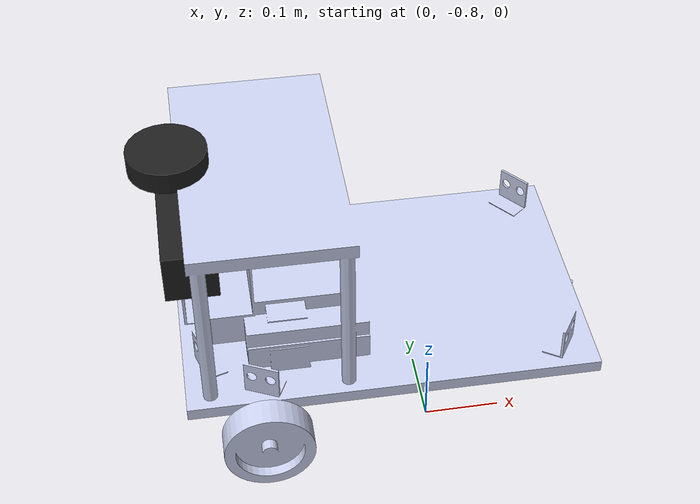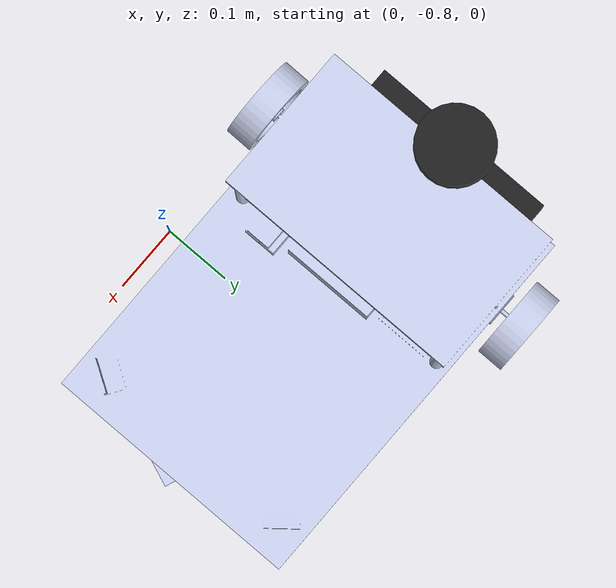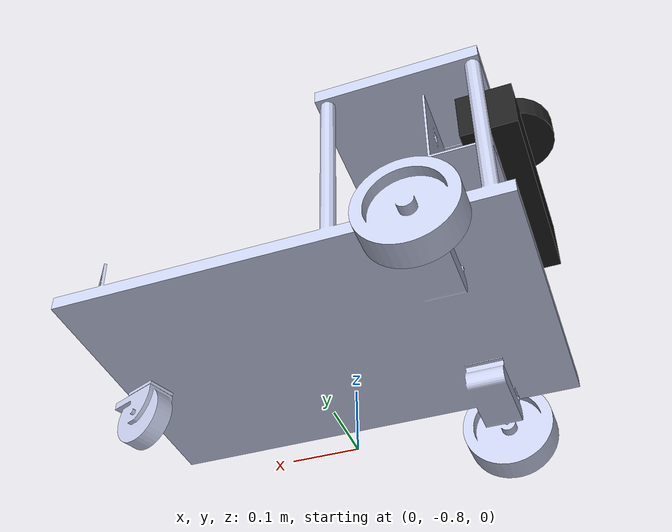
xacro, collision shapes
<?xml version="1.0" ?>
<robot name="potter" xmlns:xacro="http://ros.org/wiki/xacro">
  <xacro:include filename="$(find potter_description)/urdf/potter.gazebo.xacro"/>

  <link name="base_footprint"/>

  <joint name="base_joint" type="fixed">
    <parent link="base_footprint"/>
    <child link="base_link"/>
    <origin xyz="0.0 0.0 0.010" rpy="0 0 0"/>
  </joint>

  <link
    name="base_link">
    <inertial>
      <origin
        xyz="-0.120080357398591 -0.586886874304 0.0796377824349438"
        rpy="0 0 0" />
      <mass
        value="9.14455558385384" />
      <inertia
        ixx="0.188342414177923"
        ixy="-0.00224550467699626"
        ixz="0.0458582138362113"
        iyy="0.280000071911791"
        iyz="-0.00175136226771816"
        izz="0.288397145801752" />
    </inertial>
    <visual>
      <origin
        xyz="0 0 0"
        rpy="0 0 0" />
      <geometry>
        <mesh
          filename="package://potter_description/meshes/base_link.STL" />
      </geometry>
      <material
        name="">
        <color
          rgba="0.792156862745098 0.819607843137255 0.933333333333333 1" />
      </material>
    </visual>
    <collision>
      <origin
        xyz="0 0 0"
        rpy="0 0 0" />
      <geometry>
        <mesh
          filename="package://potter_description/meshes/base_link.STL" />
      </geometry>
    </collision>
  </link>

  <link
    name="roda_direita">
    <inertial>
      <origin
        xyz="0.000340924586355457 0.00046328993449625 -0.0199805356473918"
        rpy="0 0 0" />
      <mass
        value="0.287619024392822" />
      <inertia
        ixx="0.000388411933483959"
        ixy="8.02432065699622E-11"
        ixz="1.90860427722761E-09"
        iyy="0.00038841198347906"
        iyz="2.59364442995176E-09"
        izz="0.000717036148051891" />
    </inertial>
    <visual>
      <origin
        xyz="0 0 0"
        rpy="0 0 0" />
      <geometry>
        <mesh
          filename="package://potter_description/meshes/roda_direita.STL" />
      </geometry>
      <material
        name="">
        <color
          rgba="0.792156862745098 0.819607843137255 0.933333333333333 1" />
      </material>
    </visual>
    <collision>
      <origin
        xyz="0 0 0"
        rpy="0 0 0" />
      <geometry>
        <mesh
          filename="package://potter_description/meshes/roda_direita.STL" />
      </geometry>
    </collision>
  </link>

  <joint
    name="rodadireita"
    type="continuous">
    <origin
      xyz="-0.21335 -0.3315 -0.020509"
      rpy="-1.5708 0.16486 -1.0187E-17" />
    <parent
      link="base_link" />
    <child
      link="roda_direita" />
    <axis
      xyz="0 0 -1" />
  </joint>

  <link
    name="roda_esquerda">
    <inertial>
      <origin
        xyz="0.000340924586351654 0.000463289934497416 0.0210452055367201"
        rpy="0 0 0" />
      <mass
        value="0.287619024392823" />
      <inertia
        ixx="0.00038841193348396"
        ixy="8.02432065589412E-11"
        ixz="1.90860428583043E-09"
        iyy="0.00038841198347906"
        iyz="2.59364442982349E-09"
        izz="0.000717036148051891" />
    </inertial>
    <visual>
      <origin
        xyz="0 0 0"
        rpy="0 0 0" />
      <geometry>
        <mesh
          filename="package://potter_description/meshes/roda_esquerda.STL" />
      </geometry>
      <material
        name="">
        <color
          rgba="0.792156862745098 0.819607843137255 0.933333333333333 1" />
      </material>
    </visual>
    <collision>
      <origin
        xyz="0 0 0"
        rpy="0 0 0" />
      <geometry>
        <mesh
          filename="package://potter_description/meshes/roda_esquerda.STL" />
      </geometry>
    </collision>
  </link>

  <joint
    name="rodaesquerda"
    type="continuous">
    <origin
      xyz="-0.21903 -0.78921 -0.020325"
      rpy="-1.5615 0.33848 3.1359" />
    <parent
      link="base_link" />
    <child
      link="roda_esquerda" />
    <axis
      xyz="0 0 1" />
  </joint>

  <link
    name="roda_traseira">
    <inertial>
      <origin
        xyz="-0.00393732848174855 0.0351667341122072 0.0127005467610188"
        rpy="0 0 0" />
      <mass
        value="0.179276619183742" />
      <inertia
        ixx="9.35648790378295E-05"
        ixy="-7.45002064243031E-07"
        ixz="-6.90490734515864E-08"
        iyy="8.30592250596926E-05"
        iyz="7.28274909922964E-07"
        izz="0.000146126883741779" />
    </inertial>
    <visual>
      <origin
        xyz="0 0 0"
        rpy="0 0 0" />
      <geometry>
        <mesh
          filename="package://potter_description/meshes/roda_traseira.STL" />
      </geometry>
      <material
        name="">
        <color
          rgba="0.792156862745098 0.819607843137255 0.933333333333333 1" />
      </material>
    </visual>
    <collision>
      <origin
        xyz="0 0 0"
        rpy="0 0 0" />
      <geometry>
        <mesh
          filename="package://potter_description/meshes/roda_traseira.STL" />
      </geometry>
    </collision>
  </link>

  <joint
    name="rodatraseira"
    type="revolute">
    <origin
      xyz="0.22766 -0.5673 0"
      rpy="-1.5708 -0.11103 2.7687" />
    <parent
      link="base_link" />
    <child
      link="roda_traseira" />
    <axis
      xyz="0.1108 -0.99384 0" />
    <limit
	    lower="-3.1415926536"
	    upper="3.1415926536"
      effort="10000"
      velocity="10" />
  </joint>

  <link name="base_scan">
    <visual>
      <origin xyz="0 0 0.0" rpy="0 0 3.14"/>
      <geometry>
        <mesh filename="package://potter_description/meshes/lds.stl" scale="0.001 0.001 0.001"/>
      </geometry>
      <material name="dark"/>
    </visual>

    <collision>
      <origin xyz="0.015 0 -0.0065" rpy="0 0 3.14"/>
      <geometry>
        <cylinder length="0.0315" radius="0.055"/>
      </geometry>
    </collision>

    <inertial>
      <mass value="0.114" />
      <origin xyz="0 0 0" />
      <inertia ixx="0.001" ixy="0.0" ixz="0.0"
               iyy="0.001" iyz="0.0"
               izz="0.001" />
    </inertial>
  </link>

  <joint name="base_scan_joint" type="fixed">
    <origin xyz="-0.30 -0.5673 0.30" rpy="0 0 3.14"/>
    <parent link="base_link"/>
    <child link="base_scan"/>
  </joint>

  <link name="kinect_link">
    <visual>
      <origin xyz="0.0 0 0.0" rpy="0 0 0"/>
      <geometry>
        <mesh filename="package://potter_description/meshes/kinect.dae" />
      </geometry>
      <material name="light_black"/>
    </visual>

    <collision>
      <origin xyz="0.0 0 0.00" rpy="0 0 0"/>
      <geometry>
        <box size="0.073000 0.276000 0.072000"/>
      </geometry>
    </collision>

    <inertial>
      <origin xyz="0 0 0" rpy="0 0 0"/>
      <mass value="0.1"/>
      <inertia ixx="2.2124416e-03" ixy="-1.2294101e-05" ixz="3.4938785e-05"
               iyy="2.1193702e-03" iyz="-5.0120904e-06"
               izz="2.0064271e-03" />
    </inertial>
  </link>

  <joint name="kinect_joint" type="fixed">
    <parent link="base_link"/>
    <child link="kinect_link"/>
    <origin xyz="-0.3 -0.5673 0.20" rpy="0 0 3.14"/>
  </joint>

    <joint name="camera_depth_joint" type="fixed">
    <origin xyz="0 0 0" rpy="-1.57 0 -1.57 "/>
    <parent link="kinect_link"/>
    <child link="camera_depth_link"/>
  </joint>

  <link name="camera_depth_link"></link>
</robot>
